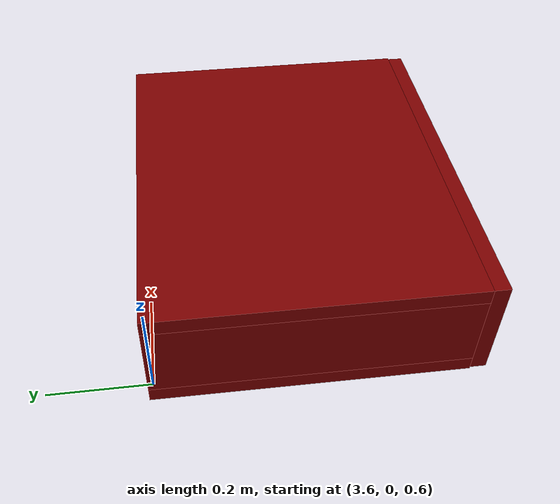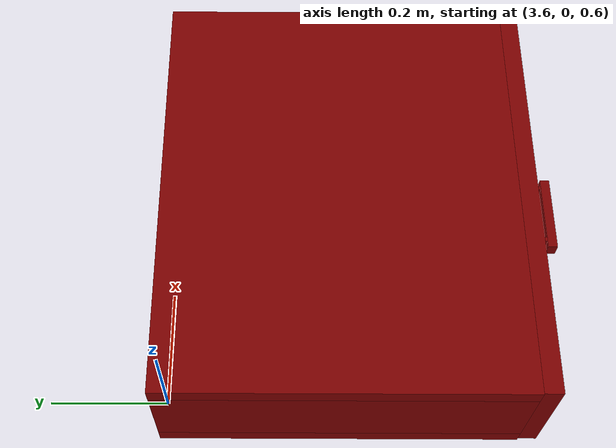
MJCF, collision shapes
<mujoco model="drawer">
  <compiler angle="radian" />
  <asset>
    <texture file="/home/lab423/wm/vlm/robocasa/robocasa/models/assets/textures/flat/gray.png" type="cube" name="flat/gray" />
    <material name="stack_4_main_group_2_mat" shininess="0.1" texture="flat/gray" />
  <mesh file="/home/lab423/wm/vlm/robocasa/robocasa/models/assets/fixtures/cabinets/cabinet_panels/CabinetDoorPanel047/visuals/CabinetDoorPanel047.obj" name="stack_4_main_group_2_door_CabinetDoorPanel047_vis" scale="1.7833567000247057 1.059007917445114 0.3472203854485292" />
    <texture file="/home/lab423/wm/vlm/robocasa/robocasa/models/assets/textures/flat/gray.png" name="flat/gray_2d" type="2d" />
    <material name="stack_4_main_group_2_door_mat" rgba="1 1 1 1.0" texture="flat/gray_2d" shininess="0.5" specular="0.3103448502657381" />
  <mesh file="/home/lab423/wm/vlm/robocasa/robocasa/models/assets/fixtures/handles/CabinetHandle003/visuals/CabinetHandle003.obj" name="stack_4_main_group_2_door_handle_CabinetHandle003_vis" scale="1.0 1.0 0.4594092281400349" />
    <texture file="/home/lab423/wm/vlm/robocasa/robocasa/models/assets/textures/metals/bright_metal.png" name="VisualMeshElongatedHandle_metals/bright_metal" type="2d" />
    <material name="stack_4_main_group_2_door_handle_mat" rgba="1 1 1 1.0" texture="VisualMeshElongatedHandle_metals/bright_metal" shininess="0.5" specular="0.3103448502657381" />
  </asset>
  <worldbody>
    <body>
      <body name="stack_4_main_group_2_main" pos="3.8646626494078515 -0.3 0.7849999999999999">
        <geom pos="0 0.015 0.09" size="0.35 0.285 0.015" type="box" mass=".2" name="stack_4_main_group_2_top" group="0" density="10" rgba="0.5 0 0 1" />
        <geom pos="0 0.015 -0.09" size="0.35 0.285 0.015" type="box" mass=".2" name="stack_4_main_group_2_bottom" group="0" density="10" rgba="0.5 0 0 1" />
        <geom pos="0 0.285 0" size="0.31999999999999995 0.015 0.075" type="box" mass=".2" name="stack_4_main_group_2_back" group="0" density="10" rgba="0.5 0 0 1" />
        <geom pos="0.33499999999999996 0.015 0" size="0.015 0.285 0.075" type="box" mass=".2" name="stack_4_main_group_2_right" group="0" density="10" rgba="0.5 0 0 1" />
        <geom pos="-0.33499999999999996 0.015 0" size="0.015 0.285 0.075" type="box" mass=".2" name="stack_4_main_group_2_left" group="0" density="10" rgba="0.5 0 0 1" />
        <body name="stack_4_main_group_2_inner_box" pos="0 0 0">
          <joint axis="0 1 0" type="slide" name="stack_4_main_group_2_slidejoint" limited="true" range="-0.6 0" damping="10" pos="0 -0.3 0" />
          <geom pos="0 0 -0.059" size="0.31899999999999995 0.27 0.015" type="box" mass=".2" name="stack_4_main_group_2_inner_bottom" group="0" density="10" rgba="0.5 0 0 1" />
          <geom pos="0 0.255 0" size="0.2889999999999999 0.015 0.044" type="box" mass=".2" name="stack_4_main_group_2_inner_back" group="0" density="10" rgba="0.5 0 0 1" />
          <geom pos="0.30399999999999994 0 0" size="0.015 0.27 0.044" type="box" mass=".2" name="stack_4_main_group_2_inner_right" group="0" density="10" rgba="0.5 0 0 1" />
          <geom pos="-0.30399999999999994 0 0" size="0.015 0.27 0.044" type="box" mass=".2" name="stack_4_main_group_2_inner_left" group="0" density="10" rgba="0.5 0 0 1" />

          <geom name="stack_4_main_group_2_reg_int" type="box" pos="0.0 -0.015 0.015" size="0.2889999999999999 0.255 0.059" group="1" conaffinity="0" contype="0" rgba="0.0 1.0 0.0 0.0" />
          <site rgba="0.5 0.5 0.5 0" size="0.005" pos="-1e-05 -1e-05 -1e-05" name="stack_4_main_group_2_int_p0" />
          <site rgba="1 1 0 0" size="0.005" pos="1e-05 -1e-05 -1e-05" name="stack_4_main_group_2_int_px" />
          <site rgba="0 1 1 0" size="0.005" pos="-1e-05 1e-05 -1e-05" name="stack_4_main_group_2_int_py" />
          <site rgba="1 0 1 0" size="0.005" pos="-1e-05 -1e-05 1e-05" name="stack_4_main_group_2_int_pz" />
        <geom pos="0 0 -0.059" size="0.31899999999999995 0.27 0.015" type="box" mass="1e-8" material="stack_4_main_group_2_mat" name="stack_4_main_group_2_inner_bottom_visual" group="1" density="10" conaffinity="0" contype="0" />
          <geom pos="0 0.255 0" size="0.2889999999999999 0.015 0.044" type="box" mass="1e-8" material="stack_4_main_group_2_mat" name="stack_4_main_group_2_inner_back_visual" group="1" density="10" conaffinity="0" contype="0" />
          <geom pos="0.30399999999999994 0 0" size="0.015 0.27 0.044" type="box" mass="1e-8" material="stack_4_main_group_2_mat" name="stack_4_main_group_2_inner_right_visual" group="1" density="10" conaffinity="0" contype="0" />
          <geom pos="-0.30399999999999994 0 0" size="0.015 0.27 0.044" type="box" mass="1e-8" material="stack_4_main_group_2_mat" name="stack_4_main_group_2_inner_left_visual" group="1" density="10" conaffinity="0" contype="0" />

          <body name="stack_4_main_group_2_door_main" pos="0.0 -0.2850000887650182 5.1739869333584484e-09">
        <geom mesh="stack_4_main_group_2_door_CabinetDoorPanel047_vis" type="mesh" solimp="0.9 0.95 0.001 0.5 2" solref="0.02 1" friction="1 0.005 0.0001" material="stack_4_main_group_2_door_mat" conaffinity="0" contype="0" group="1" name="stack_4_main_group_2_door_g0" density="0" />
        <geom type="box" pos="0.0 8.876501821918436e-08 -5.1739869333584484e-09" size="0.3485 0.015 0.1035" quat="1.0 0.0 0.0 0.0" group="0" rgba="0.5 0 0 0.5" density="10" solref="0.02 1" solimp="0.9 0.95 0.001 0.5 2" name="stack_4_main_group_2_door_g1" friction="1 0.005 0.0001" />
        <geom name="stack_4_main_group_2_door_reg_main" type="box" pos="0.0 8.876501821918436e-08 -5.1739869333584484e-09" size="0.3485 0.015 0.1035" group="1" conaffinity="0" contype="0" rgba="0 1 0 0" mass="0" solref="0.02 1" solimp="0.9 0.95 0.001 0.5 2" density="0" friction="1 0.005 0.0001" />
      <site pos="0.0 0.0 0.0" size="0.0035667134000494116 0.0021180158348902277 0.0006944407708970584" rgba="1 0 0 0" type="sphere" group="0" name="stack_4_main_group_2_door_default_site" /><body name="stack_4_main_group_2_door_handle_main" euler="0.0 1.5708 0.0" pos="0.0 -0.03637041087568498 0.0">
        <geom mesh="stack_4_main_group_2_door_handle_CabinetHandle003_vis" type="mesh" solimp="0.9 0.95 0.001 0.5 2" solref="0.02 1" friction="1 0.005 0.0001" material="stack_4_main_group_2_door_handle_mat" conaffinity="0" contype="0" group="1" name="stack_4_main_group_2_door_handle_g0" density="0" />
        <geom type="box" pos="0.0 -0.01527157612144947 0.0" size="0.011696524918079376 0.0077113197185099125 0.06318815734848666" quat="1.0 0.0 0.0 0.0" group="0" rgba="0.5 0 0 0.5" density="10" solref="0.02 1" solimp="0.9 0.95 0.001 0.5 2" name="stack_4_main_group_2_door_handle_g1" friction="1 0.005 0.0001" />
        <geom type="box" pos="-2.3449556242447345e-17 0.00762567576020956 0.04906415818130875" size="0.011696526780724525 0.015480552799999714 0.0036177326359396814" quat="1.0 0.0 0.0 0.0" group="0" rgba="0.5 0 0 0.5" density="10" solref="0.02 1" solimp="0.9 0.95 0.001 0.5 2" name="stack_4_main_group_2_door_handle_g2" friction="1 0.005 0.0001" />
        <geom type="box" pos="-2.3449556242447345e-17 0.00762567576020956 -0.04901496475861254" size="0.011696524918079376 0.015480552799999714 0.0036177326359396814" quat="1.0 0.0 0.0 0.0" group="0" rgba="0.5 0 0 0.5" density="10" solref="0.02 1" solimp="0.9 0.95 0.001 0.5 2" name="stack_4_main_group_2_door_handle_g3" friction="1 0.005 0.0001" />
        <geom name="stack_4_main_group_2_door_handle_reg_main" type="box" pos="0.0 0.0 0.0" size="0.012435028165578843 0.023870499640703202 0.0635" group="1" conaffinity="0" contype="0" rgba="0 1 0 0" mass="0" solref="0.02 1" solimp="0.9 0.95 0.001 0.5 2" density="0" friction="1 0.005 0.0001" />
      <site pos="0.0 0.0 0.0" size="0.002 0.002 0.0009188184562800698" rgba="1 0 0 0" type="sphere" group="0" name="stack_4_main_group_2_door_handle_default_site" /></body>
    </body>
    </body>

        <geom name="stack_4_main_group_2_reg_main" type="box" pos="0.0 0.0 0.0" size="0.35 0.3 0.105" group="1" conaffinity="0" contype="0" rgba="0.0 1.0 0.0 0.0" />
        <site rgba="0 0 0 0" size="0.005" pos="0.0 0.0 0.0" name="stack_4_main_group_2_ext_p0" />
        <site rgba="1 0 0 0" size="0.005" pos="0.0 0.0 0.0" name="stack_4_main_group_2_ext_px" />
        <site rgba="0 1 0 0" size="0.005" pos="0.0 0.0 0.0" name="stack_4_main_group_2_ext_py" />
        <site rgba="0 0 1 0" size="0.005" pos="0.0 0.0 0.0" name="stack_4_main_group_2_ext_pz" />
      <geom pos="0 0.015 0.09" size="0.35 0.285 0.015" type="box" mass="1e-8" material="stack_4_main_group_2_mat" name="stack_4_main_group_2_top_visual" group="1" density="10" conaffinity="0" contype="0" />
        <geom pos="0 0.015 -0.09" size="0.35 0.285 0.015" type="box" mass="1e-8" material="stack_4_main_group_2_mat" name="stack_4_main_group_2_bottom_visual" group="1" density="10" conaffinity="0" contype="0" />
        <geom pos="0 0.285 0" size="0.31999999999999995 0.015 0.075" type="box" mass="1e-8" material="stack_4_main_group_2_mat" name="stack_4_main_group_2_back_visual" group="1" density="10" conaffinity="0" contype="0" />
        <geom pos="0.33499999999999996 0.015 0" size="0.015 0.285 0.075" type="box" mass="1e-8" material="stack_4_main_group_2_mat" name="stack_4_main_group_2_right_visual" group="1" density="10" conaffinity="0" contype="0" />
        <geom pos="-0.33499999999999996 0.015 0" size="0.015 0.285 0.075" type="box" mass="1e-8" material="stack_4_main_group_2_mat" name="stack_4_main_group_2_left_visual" group="1" density="10" conaffinity="0" contype="0" />
        <site pos="0.0 0.0 0.0" size="0.002 0.002 0.002" rgba="1 0 0 0" type="sphere" group="0" name="stack_4_main_group_2_default_site" /></body>
    </body>
  </worldbody>
<actuator /><sensor /><tendon /><equality /><contact /></mujoco>
